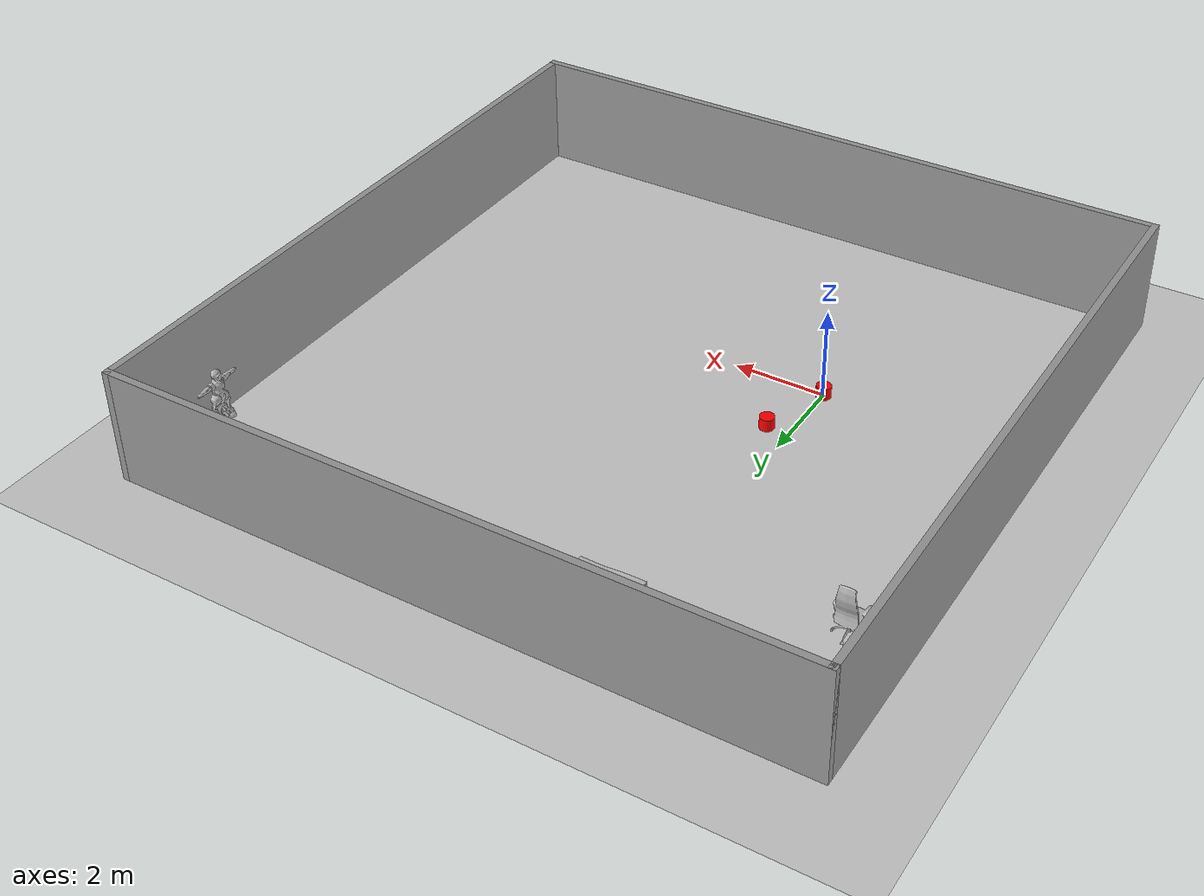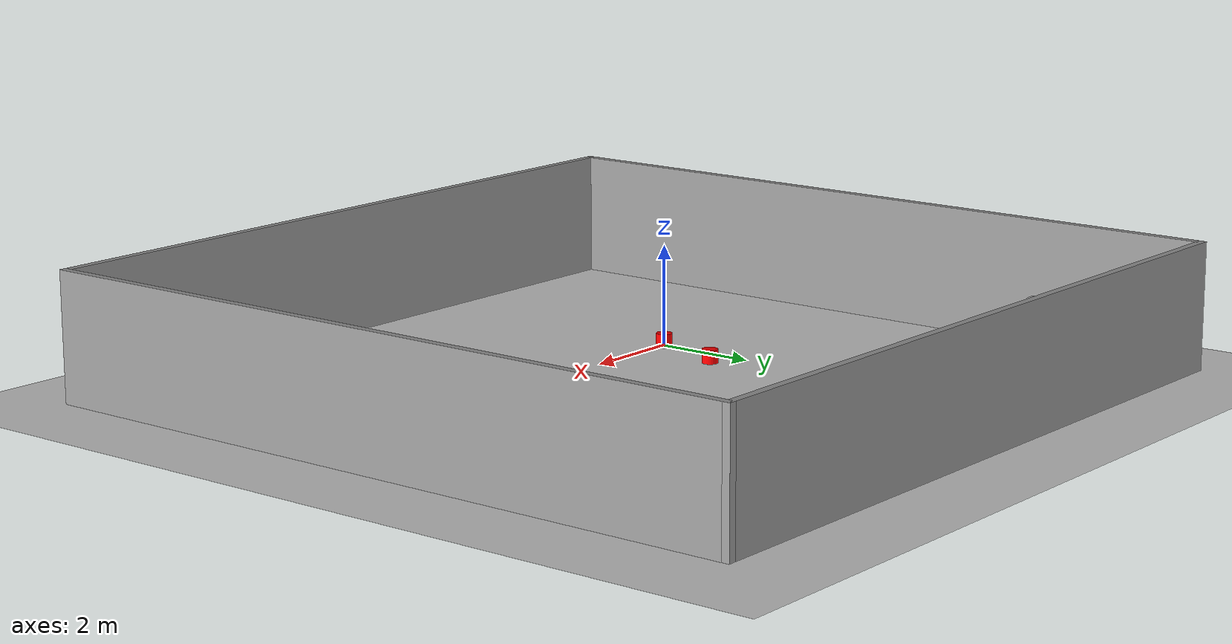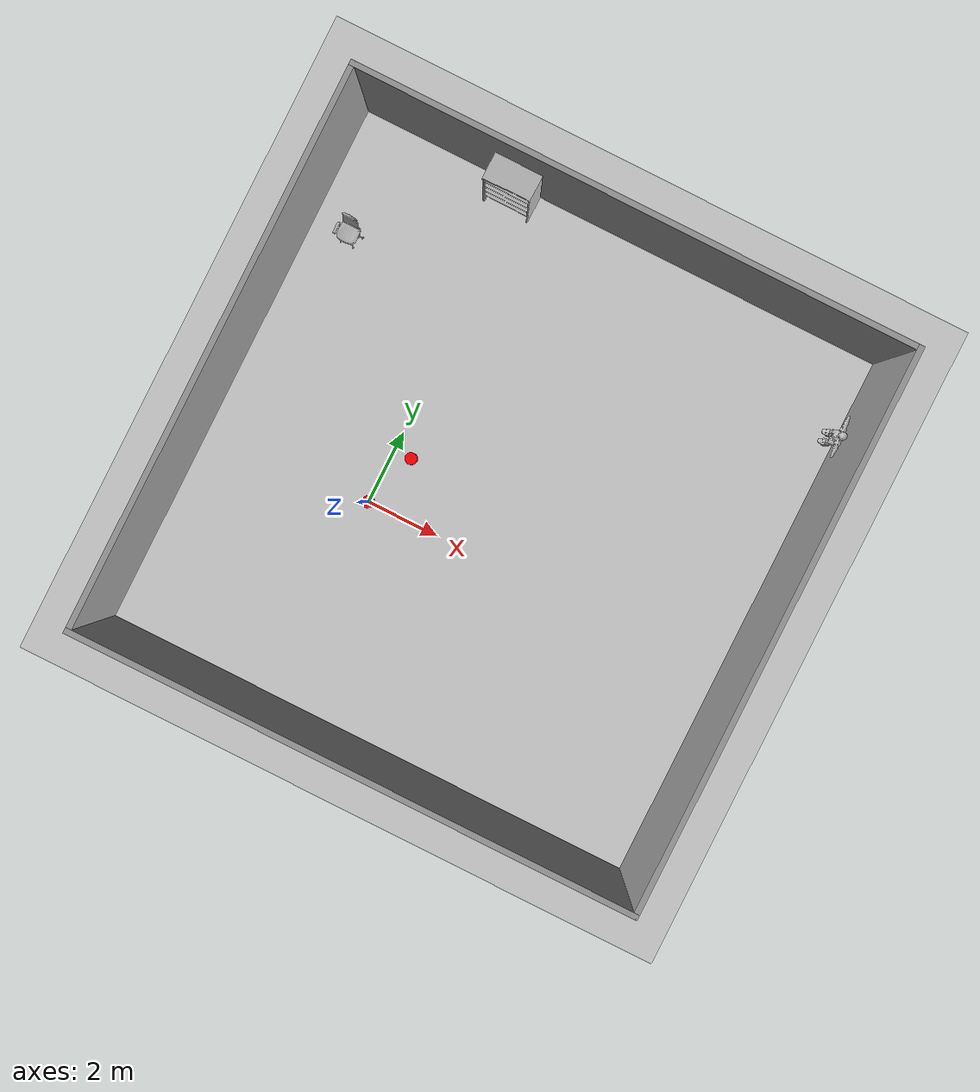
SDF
<sdf version="1.7">
 <world name="default">
  <model name="ground_plane">
   <static>1</static>
   <link name="link">
    <collision name="collision">
     <geometry><plane><normal>0 0 1</normal><size>100 100</size></plane></geometry>
     <surface><friction><ode><mu>100</mu><mu2>50</mu2></ode></friction></surface>
    </collision>
    <visual name="visual">
     <cast_shadows>0</cast_shadows>
     <geometry><plane><normal>0 0 1</normal><size>100 100</size></plane></geometry>
     <material>
      <script><uri>file://media/materials/scripts/gazebo.material</uri><name>Gazebo/Grey</name></script>
     </material>
    </visual>
   </link>
  </model>
  <model name="walls">
   <pose>2.77787 1.7398 0 0 -0 0</pose>
   <link name="Wall_13">
    <collision name="Wall_13_Collision">
     <geometry><box><size>15 0.15 2.5</size></box></geometry>
     <pose>0 0 1.25 0 -0 0</pose>
    </collision>
    <visual name="Wall_13_Visual">
     <pose>0 0 1.25 0 -0 0</pose>
     <geometry><box><size>15 0.15 2.5</size></box></geometry>
     <material>
      <script><uri>file://media/materials/scripts/gazebo.material</uri><name>Gazebo/Grey</name></script>
      <ambient>1 1 1 1</ambient>
     </material>
     <meta><layer>0</layer></meta>
    </visual>
    <pose>-0 -7.425 0 0 -0 0</pose>
   </link>
   <link name="Wall_14">
    <collision name="Wall_14_Collision">
     <geometry><box><size>0.15 0.15 2.5</size></box></geometry>
     <pose>0 0 1.25 0 -0 0</pose>
    </collision>
    <visual name="Wall_14_Visual">
     <pose>0 0 1.25 0 -0 0</pose>
     <geometry><box><size>0.15 0.15 2.5</size></box></geometry>
     <material>
      <script><uri>file://media/materials/scripts/gazebo.material</uri><name>Gazebo/Grey</name></script>
      <ambient>1 1 1 1</ambient>
     </material>
     <meta><layer>0</layer></meta>
    </visual>
    <pose>7.425 -7.425 0 0 -0 0</pose>
   </link>
   <link name="Wall_17">
    <collision name="Wall_17_Collision">
     <geometry><box><size>15 0.15 2.5</size></box></geometry>
     <pose>0 0 1.25 0 -0 0</pose>
    </collision>
    <visual name="Wall_17_Visual">
     <pose>0 0 1.25 0 -0 0</pose>
     <geometry><box><size>15 0.15 2.5</size></box></geometry>
     <material>
      <script><uri>file://media/materials/scripts/gazebo.material</uri><name>Gazebo/Grey</name></script>
      <ambient>1 1 1 1</ambient>
     </material>
     <meta><layer>0</layer></meta>
    </visual>
    <pose>7.425 0 0 0 -0 1.5708</pose>
   </link>
   <link name="Wall_19">
    <collision name="Wall_19_Collision">
     <geometry><box><size>15 0.15 2.5</size></box></geometry>
     <pose>0 0 1.25 0 -0 0</pose>
    </collision>
    <visual name="Wall_19_Visual">
     <pose>0 0 1.25 0 -0 0</pose>
     <geometry><box><size>15 0.15 2.5</size></box></geometry>
     <material>
      <script><uri>file://media/materials/scripts/gazebo.material</uri><name>Gazebo/Grey</name></script>
      <ambient>1 1 1 1</ambient>
     </material>
     <meta><layer>0</layer></meta>
    </visual>
    <pose>-0 7.425 0 0 -0 3.14159</pose>
   </link>
   <link name="Wall_20">
    <collision name="Wall_20_Collision">
     <geometry><box><size>0.15 0.15 2.5</size></box></geometry>
     <pose>0 0 1.25 0 -0 0</pose>
    </collision>
    <visual name="Wall_20_Visual">
     <pose>0 0 1.25 0 -0 0</pose>
     <geometry><box><size>0.15 0.15 2.5</size></box></geometry>
     <material>
      <script><uri>file://media/materials/scripts/gazebo.material</uri><name>Gazebo/Grey</name></script>
      <ambient>1 1 1 1</ambient>
     </material>
     <meta><layer>0</layer></meta>
    </visual>
    <pose>-7.425 7.425 0 0 -0 0</pose>
   </link>
   <link name="Wall_21">
    <collision name="Wall_21_Collision">
     <geometry><box><size>15 0.15 2.5</size></box></geometry>
     <pose>0 0 1.25 0 -0 0</pose>
    </collision>
    <visual name="Wall_21_Visual">
     <pose>0 0 1.25 0 -0 0</pose>
     <geometry><box><size>15 0.15 2.5</size></box></geometry>
     <material>
      <script><uri>file://media/materials/scripts/gazebo.material</uri><name>Gazebo/Grey</name></script>
      <ambient>1 1 1 1</ambient>
     </material>
     <meta><layer>0</layer></meta>
    </visual>
    <pose>-7.425 0 0 0 -0 -1.5708</pose>
   </link>
   <static>1</static>
  </model>
  <model name="desk_chair">
   <static>1</static>
   <link name="link">
    <collision name="collision">
     <pose>0.001581 0.000308 0.612847 0 -0 0</pose>
     <geometry><cylinder><radius>0.33</radius><length>1.23</length></cylinder></geometry>
    </collision>
    <visual name="visual">
     <geometry>
      <mesh><uri>model://desk_chair/meshes/desk_chair.obj</uri><scale>0.01 0.01 0.01</scale></mesh>
     </geometry>
    </visual>
   </link>
   <pose>-3.50506 5.97271 0 0 -0 0</pose>
  </model>
  <model name="servicebot">
   <link name="link">
    <collision name="collision">
     <geometry>
      <mesh><uri>model://servicebot/meshes/servicebot.obj</uri><scale>0.01 0.01 0.01</scale></mesh>
     </geometry>
    </collision>
    <visual name="visual">
     <geometry>
      <mesh><uri>model://servicebot/meshes/servicebot.obj</uri><scale>0.01 0.01 0.01</scale></mesh>
     </geometry>
    </visual>
    <inertial>
     <inertia><ixx>1</ixx><ixy>0</ixy><ixz>0</ixz><iyy>1</iyy><iyz>0</iyz><izz>1</izz></inertia>
     <mass>1</mass>
    </inertial>
   </link>
   <pose>9.93686 6.82726 0.002543 0.004868 -0 1.62041</pose>
  </model>
  <model name="StorageRackCoverOpen">
   <link name="link">
    <visual name="visual">
     <geometry><mesh><uri>model://StorageRackCoverOpen/meshes/StorageRackCoverOpen.obj</uri></mesh></geometry>
    </visual>
    <collision name="collision">
     <geometry><mesh><uri>model://StorageRackCoverOpen/meshes/StorageRackCoverOpen.obj</uri></mesh></geometry>
    </collision>
    <inertial>
     <inertia><ixx>1</ixx><ixy>0</ixy><ixz>0</ixz><iyy>1</iyy><iyz>0</iyz><izz>1</izz></inertia>
     <mass>1</mass>
    </inertial>
   </link>
   <pose>-0.214305 8.68732 -0 -0 1e-06 -0.010782</pose>
  </model>
  <model name="turtlebot3_dqn_obstacle1">
   <plugin name="obstacle1" filename="libobstacle5.so"/>
   <include><pose>0.5 1.5 0 0 0 0</pose><uri>model://turtlebot3_dqn_world/obstacle4</uri></include>
  </model>
  <model name="turtlebot3_dqn_obstacle2">
   <plugin name="obstacle2" filename="libobstacle6.so"/>
   <include><uri>model://turtlebot3_dqn_world/obstacle5</uri></include>
  </model>
  <model name="turtlebot3_dqn_obstacle3">
   <plugin name="obstacle3" filename="libobstacle7.so"/>
   <include><uri>model://turtlebot3_dqn_world/obstacle6</uri></include>
  </model>
 </world>
</sdf>
